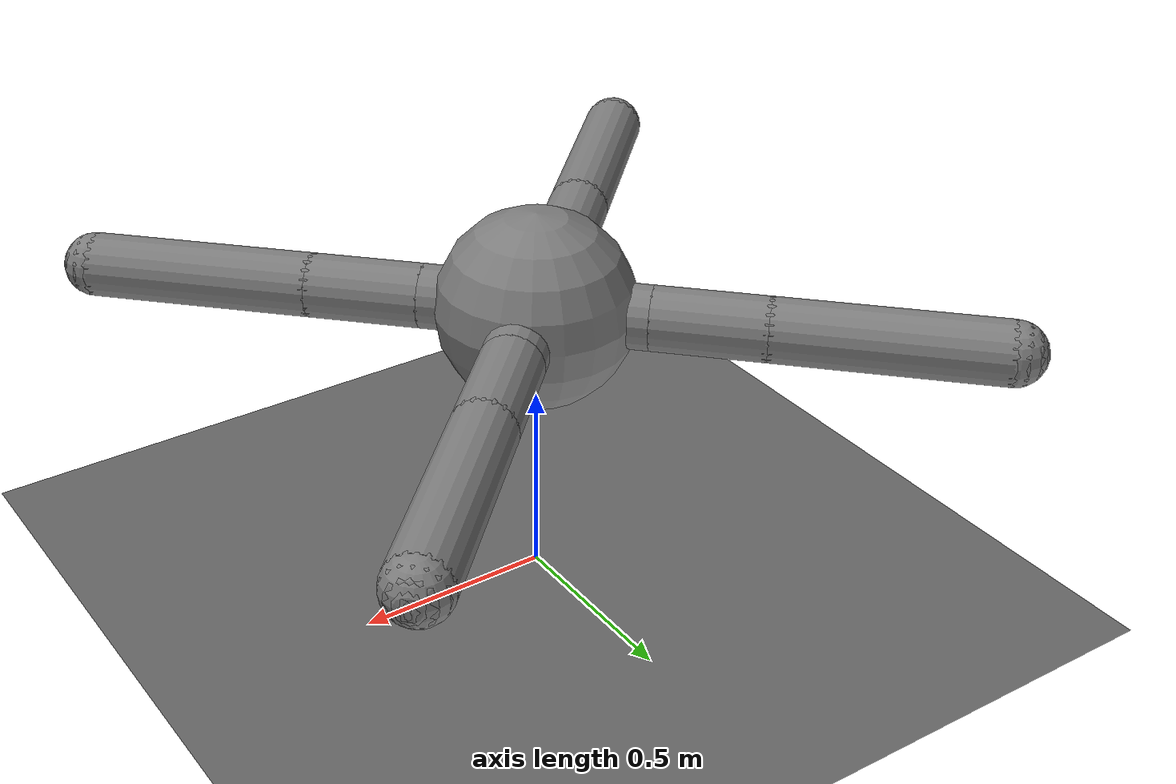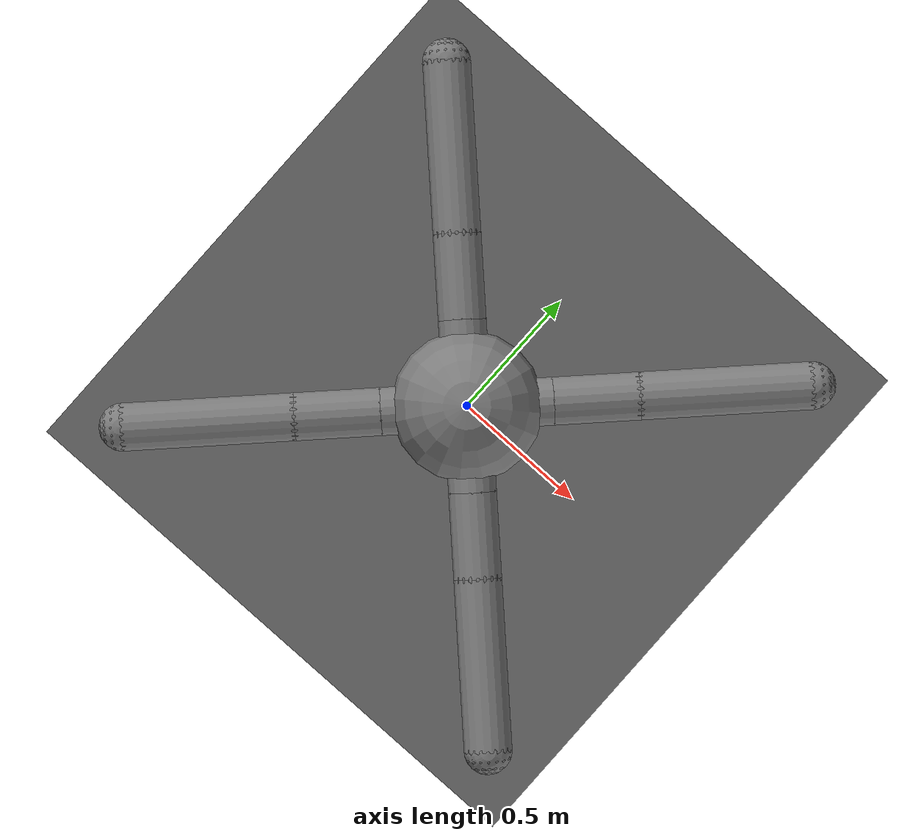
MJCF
<mujoco model="ant">
  <compiler angle="degree" coordinate="local" inertiafromgeom="true"/>
  <option timestep="0.01" iterations="4" />
  <custom>
    <!-- brax custom params -->
    <numeric data="0.0 0.0 0.55 1.0 0.0 0.0 0.0 0.0 1.0 0.0 1.0 0.0 1.0 0.0 1.0 0.0 0.0 0.55 1.0 0.0 0.0 0.0 0.0 1.0 0.0 1.0 0.0 1.0 0.0 1.0" name="init_qpos"/>
    <numeric data="1000" name="constraint_limit_stiffness"/>
    <numeric data="4000" name="constraint_stiffness"/>
    <numeric data="10" name="constraint_ang_damping"/>
    <numeric data="20" name="constraint_vel_damping"/>
    <numeric data="0.5" name="joint_scale_pos"/>
    <numeric data="0.2" name="joint_scale_ang"/>
    <numeric data="0.0" name="ang_damping"/>
    <numeric data="1" name="spring_mass_scale"/>
    <numeric data="1" name="spring_inertia_scale"/>
    <numeric data="15" name="solver_maxls"/>
  </custom>
  <default>
    <joint armature="1" damping="1" limited="true"/>
    <geom contype="0" conaffinity="0" condim="3" density="5.0" friction="1 0.5 0.5"/>
  </default>
  <asset>
    <texture builtin="gradient" height="100" rgb1="1 1 1" rgb2="0 0 0" type="skybox" width="100"/>
    <texture builtin="flat" height="1278" mark="cross" markrgb="1 1 1" name="texgeom" random="0.01" rgb1="0.8 0.6 0.4" rgb2="0.8 0.6 0.4" type="cube" width="127"/>
    <texture builtin="checker" height="100" name="texplane" rgb1="0 0 0" rgb2="0.8 0.8 0.8" type="2d" width="100"/>
    <material name="MatPlane" reflectance="0.5" shininess="1" specular="1" texrepeat="60 60" texture="texplane"/>
    <material name="geom" texture="texgeom" texuniform="true" rgba = "0.6 0.4 0.4 0.5"/>
  </asset>
 <contact>
    <exclude body1="torso" body2="torso"/>
    <exclude body1="torso" body2="aux_1"/>
    <exclude body1="aux_1" body2="aux_5"/>
    <exclude body1="torso" body2="aux_2"/>
    <exclude body1="aux_2" body2="aux_6"/>
    <exclude body1="torso" body2="aux_3"/>
    <exclude body1="aux_3" body2="aux_7"/>
    <exclude body1="torso" body2="aux_4"/>
    <exclude body1="aux_4" body2="aux_8"/>
  </contact>
  <worldbody>
    <light cutoff="100" diffuse="1 1 1" dir="-0 0 -1.3" directional="true" exponent="1" pos="0 0 1.3" specular=".1 .1 .1"/>
    <geom conaffinity="1" condim="3" material="MatPlane" name="floor" pos="0 0 0" size="40 40 40" type="plane"/>
    <body name="torso" pos="0 0 0.75">
      <camera name="track" mode="trackcom" pos="0 -3 0.3" xyaxes="1 0 0 0 0 1"/>
      <geom name="torso_geom" contype="1" pos="0 0 0" size="0.25" type="sphere"/>
      <joint armature="0" damping="0" limited="false" margin="0.01" name="root" pos="0 0 0" type="free"/>
      <body name="front_left_leg" pos="0 0 0">
        <geom fromto="0.0 0.0 0.0 0.2 0.2 0.0" name="aux_1_geom" size="0.08" type="capsule"/>
        <body name="aux_1" pos="0.4 0.4 0">
          <joint axis="0 0 1" name="hip_1" pos="-0.2 -0.2 0.0" range="-30 30" type="hinge"/>
          <geom fromto="0.0 0.0 0.0 -0.2 -0.2 0.0" name="left_leg_geom" size="0.08" type="capsule"/>
          <geom name="left_hip_geom" contype="1" pos="0 0 0" size="0.08" type="sphere" mass="0"/>
          <body name="aux_5" pos="0.4 0.4 0">
            <joint axis="-1 1 0" name="ankle_1" pos="-0.4 -0.4 0.0" range="30 70" type="hinge"/>
            <geom fromto="0.0 0.0 0.0 -0.4 -0.4 0.0" name="left_ankle_geom" contype="1" size="0.08" type="capsule"/>
            <geom name="left_foot_geom" contype="1" pos="0 0 0" size="0.08" type="sphere" mass="0"/>
          </body>
        </body>
      </body>
      <body name="front_right_leg" pos="0 0 0">
        <geom fromto="0.0 0.0 0.0 -0.2 0.2 0.0" name="aux_2_geom" size="0.08" type="capsule"/>
        <body name="aux_2" pos="-0.4 0.4 0" euler = "0 0 90">
          <joint axis="0 0 1" name="hip_2" pos="-0.2 -0.2 0.0" range="-30 30" type="hinge"/>
          <geom fromto="0.0 0.0 0.0 -0.2 -0.2 0.0" name="right_leg_geom" size="0.08" type="capsule"/>
          <geom name="right_hip_geom" contype="1" pos="0 0 0" size="0.08" type="sphere" mass="0"/>
          <body name="aux_6" pos="0.4 0.4 0">
            <joint axis="-1 1 0" name="ankle_2" pos="-0.4 -0.4 0.0" range="30 70" type="hinge"/>
            <geom fromto="0.0 0.0 0.0 -0.4 -0.4 0.0" name="right_ankle_geom" contype="1" size="0.08" type="capsule"/>
            <geom name="right_foot_geom" contype="1" pos="0 0 0" size="0.08" type="sphere" mass="0"/>
          </body> material='geom'
        </body>
      </body>
      <body name="back_leg" pos="0 0 0">
        <geom fromto="0.0 0.0 0.0 -0.2 -0.2 0.0" name="aux_3_geom" size="0.08" type="capsule"/>
        <body name="aux_3" pos="-0.4 -0.4 0" euler = "0 0 180">
          <joint axis="0 0 1" name="hip_3" pos="-0.2 -0.2 0.0" range="-30 30" type="hinge"/>
          <geom fromto="0.0 0.0 0.0 -0.2 -0.2 0.0" name="back_leg_geom" size="0.08" type="capsule"/>
          <geom name="third_hip_geom" contype="1" pos="0 0 0" size="0.08" type="sphere" mass="0"/>
          <body name="aux_7" pos="0.4 0.4 0">
            <joint axis="-1 1 0" name="ankle_3" pos="-0.4 -0.4 0.0" range="30 70" type="hinge"/>
            <geom fromto="0.0 0.0 0.0 -0.4 -0.4 0.0" name="third_ankle_geom" contype="1" size="0.08" type="capsule"/>
            <geom name="third_foot_geom" contype="1" pos="0 0 0" size="0.08" type="sphere" mass="0"/>
          </body>
        </body>
      </body>
      <body name="right_back_leg" pos="0 0 0">
        <geom fromto="0.0 0.0 0.0 0.2 -0.2 0.0" name="aux_4_geom" size="0.08" type="capsule"/>
        <body name="aux_4" pos="0.4 -0.4 0" euler="0 0 270">
          <joint axis="0 0 1" name="hip_4" pos="-0.2 -0.2 0.0" range="-30 30" type="hinge"/>
          <geom fromto="0.0 0.0 0.0 -0.2 -0.2 0.0" name="rightback_leg_geom" size="0.08" type="capsule"/>
          <geom name="fourth_hip_geom" contype="1" pos="0 0 0" size="0.08" type="sphere" mass="0"/>
          <body name="aux_8" pos="0.4 0.4 0">
            <joint axis="-1 1 0" name="ankle_4" pos="-0.4 -0.4 0.0" range="30 70" type="hinge"/>
            <geom fromto="0.0 0.0 0.0 -0.4 -0.4 0.0" name="fourth_ankle_geom" contype="1" size="0.08" type="capsule"/>
            <geom name="fourth_foot_geom" contype="1" pos="0 0 0" size="0.08" type="sphere" mass="0"/>
          </body>
        </body>
      </body>
    </body>
    <body name="torso_goal" pos="0 0 0.75">
      <geom name="torso_geom_goal" contype="1" pos="0 0 0" size="0.25" type="sphere"/>
      <joint armature="0" damping="0" limited="false" margin="0.01" name="root_goal" pos="0 0 0" type="free"/>
      <body name="front_left_leg_goal" pos="0 0 0">
        <geom fromto="0.0 0.0 0.0 0.2 0.2 0.0" name="aux_1_geom_goal" size="0.08" type="capsule"/>
        <body name="aux_1_goal" pos="0.4 0.4 0">
          <joint axis="0 0 1" name="hip_1_goal" pos="-0.2 -0.2 0.0" range="-30 30" type="hinge"/>
          <geom fromto="0.0 0.0 0.0 -0.2 -0.2 0.0" name="left_leg_geom_goal" size="0.08" type="capsule"/>
          <geom name="left_hip_geom_goal" contype="1" pos="0 0 0" size="0.08" type="sphere" mass="0"/>
          <body name="aux_5_goal" pos="0.4 0.4 0">
            <joint axis="-1 1 0" name="ankle_1_goal" pos="-0.4 -0.4 0.0" range="30 70" type="hinge"/>
            <geom fromto="0.0 0.0 0.0 -0.4 -0.4 0.0" name="left_ankle_geom_goal" contype="1" size="0.08" type="capsule"/>
            <geom name="left_foot_geom_goal" contype="1" pos="0 0 0" size="0.08" type="sphere" mass="0"/>
          </body>
        </body>
      </body>
      <body name="front_right_leg_goal" pos="0 0 0">
        <geom fromto="0.0 0.0 0.0 -0.2 0.2 0.0" name="aux_2_geom_goal" size="0.08" type="capsule"/>
        <body name="aux_2_goal" pos="-0.4 0.4 0" euler = "0 0 90">
          <joint axis="0 0 1" name="hip_2_goal" pos="-0.2 -0.2 0.0" range="-30 30" type="hinge"/>
          <geom fromto="0.0 0.0 0.0 -0.2 -0.2 0.0" name="right_leg_geom_goal" size="0.08" type="capsule"/>
          <geom name="right_hip_geom_goal" contype="1" pos="0 0 0" size="0.08" type="sphere" mass="0"/>
          <body name="aux_6_goal" pos="0.4 0.4 0">
            <joint axis="-1 1 0" name="ankle_2_goal" pos="-0.4 -0.4 0.0" range="30 70" type="hinge"/>
            <geom fromto="0.0 0.0 0.0 -0.4 -0.4 0.0" name="right_ankle_geom_goal" contype="1" size="0.08" type="capsule"/>
            <geom name="right_foot_geom_goal" contype="1" pos="0 0 0" size="0.08" type="sphere" mass="0"/>
          </body>
        </body>
      </body>
      <body name="back_leg_goal" pos="0 0 0">
        <geom fromto="0.0 0.0 0.0 -0.2 -0.2 0.0" name="aux_3_geom_goal" size="0.08" type="capsule"/>
        <body name="aux_3_goal" pos="-0.4 -0.4 0" euler = "0 0 180">
          <joint axis="0 0 1" name="hip_3_goal" pos="-0.2 -0.2 0.0" range="-30 30" type="hinge"/>
          <geom fromto="0.0 0.0 0.0 -0.2 -0.2 0.0" name="back_leg_geom_goal" size="0.08" type="capsule"/>
          <geom name="third_hip_geom_goal" contype="1" pos="0 0 0" size="0.08" type="sphere" mass="0"/>
          <body name="aux_7_goal" pos="0.4 0.4 0">
            <joint axis="-1 1 0" name="ankle_3_goal" pos="-0.4 -0.4 0.0" range="30 70" type="hinge"/>
            <geom fromto="0.0 0.0 0.0 -0.4 -0.4 0.0" name="third_ankle_geom_goal" contype="1" size="0.08" type="capsule"/>
            <geom name="third_foot_geom_goal" contype="1" pos="0 0 0" size="0.08" type="sphere" mass="0"/>
          </body>
        </body>
      </body>
      <body name="right_back_leg_goal" pos="0 0 0">
        <geom fromto="0.0 0.0 0.0 0.2 -0.2 0.0" name="aux_4_geom_goal" size="0.08" type="capsule" material='geom'/>
        <body name="aux_4_goal" pos="0.4 -0.4 0" euler="0 0 270">
          <joint axis="0 0 1" name="hip_4_goal" pos="-0.2 -0.2 0.0" range="-30 30" type="hinge"/>
          <geom fromto="0.0 0.0 0.0 -0.2 -0.2 0.0" name="rightback_leg_geom_goal" size="0.08" type="capsule" material='geom'/>
          <geom name="fourth_hip_geom_goal" contype="1" pos="0 0 0" size="0.08" type="sphere" mass="0" material='geom'/>
          <body name="aux_8_goal" pos="0.4 0.4 0">
            <joint axis="-1 1 0" name="ankle_4_goal" pos="-0.4 -0.4 0.0" range="30 70" type="hinge"/>
            <geom fromto="0.0 0.0 0.0 -0.4 -0.4 0.0" name="fourth_ankle_geom_goal" contype="1" size="0.08" type="capsule" material='geom'/>
            <geom name="fourth_foot_geom_goal" contype="1" pos="0 0 0" size="0.08" type="sphere" mass="0" material='geom'/>
          </body>
        </body>
      </body>
    </body>
  </worldbody>
  <actuator>
    <motor ctrllimited="true" ctrlrange="-1.0 1.0" joint="hip_1" gear="150"/>
    <motor ctrllimited="true" ctrlrange="-1.0 1.0" joint="ankle_1" gear="150"/>
    <motor ctrllimited="true" ctrlrange="-1.0 1.0" joint="hip_2" gear="150"/>
    <motor ctrllimited="true" ctrlrange="-1.0 1.0" joint="ankle_2" gear="150"/>
    <motor ctrllimited="true" ctrlrange="-1.0 1.0" joint="hip_3" gear="150"/>
    <motor ctrllimited="true" ctrlrange="-1.0 1.0" joint="ankle_3" gear="150"/>
    <motor ctrllimited="true" ctrlrange="-1.0 1.0" joint="hip_4" gear="150"/>
    <motor ctrllimited="true" ctrlrange="-1.0 1.0" joint="ankle_4" gear="150"/>
  </actuator>
</mujoco>
